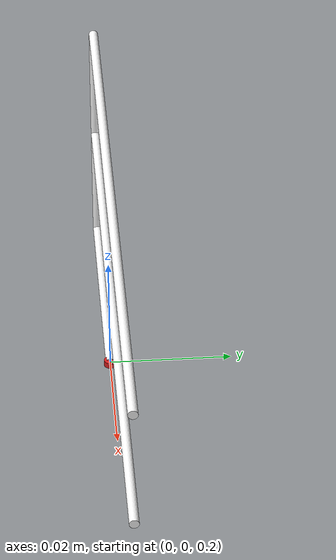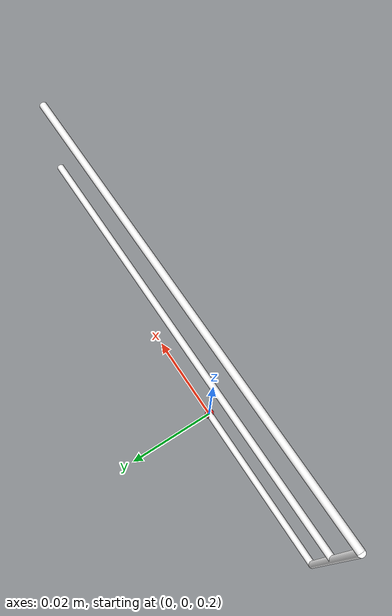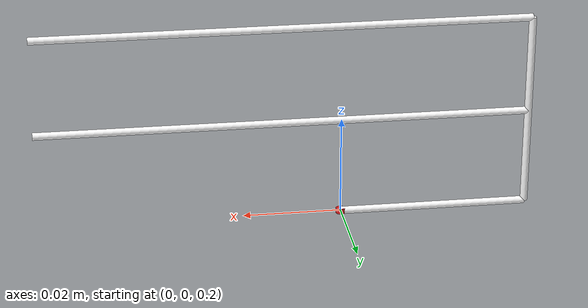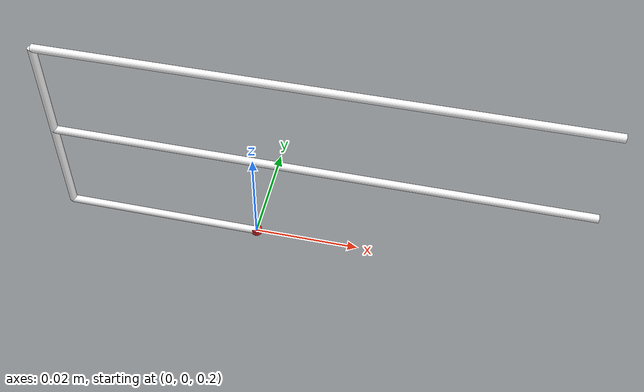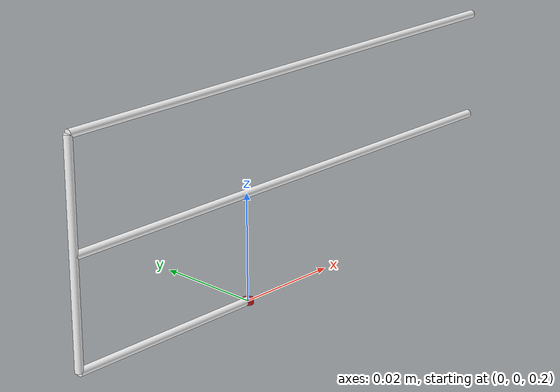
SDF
<?xml version="1.0"?>
<sdf version='1.9'>
  <world name="world1">
    <physics name="1ms" type="ignored">
      <max_step_size>0.0001</max_step_size>
      <real_time_factor>1</real_time_factor>
      <gravity>0 0 -9.81</gravity>
    </physics>
    <plugin filename="libignition-gazebo-physics-system.so"
      name="ignition::gazebo::systems::Physics">
</plugin>
    <plugin filename="libignition-gazebo-user-commands-system.so"
      name="ignition::gazebo::systems::UserCommands">
</plugin>
    <plugin filename="libignition-gazebo-scene-broadcaster-system.so"
      name="ignition::gazebo::systems::SceneBroadcaster">
</plugin>

    <light type="directional" name="sun">
      <cast_shadows>true</cast_shadows>
      <pose>0 0 10 0 0 0</pose>
      <diffuse>0.8 0.8 0.8 1</diffuse>
      <specular>0.2 0.2 0.2 1</specular>
      <attenuation>
        <range>1000</range>
        <constant>0.9</constant>
        <linear>0.01</linear>
        <quadratic>0.001</quadratic>
      </attenuation>
      <direction>-0.5 0.1 -0.9</direction>
    </light>
    <model name="ground_plane">
      <pose relative_to="world">0 0 0 0 0 0</pose>
      <static>true</static>
      <link name="link">
        <collision name="link">
          <geometry>
            <plane>
              <normal>0 0 1</normal>
            </plane>
          </geometry>
        </collision>
        <visual name="link">
          <geometry>
            <plane>
              <normal>0 0 1</normal>
              <size>100 100</size>
            </plane>
          </geometry>
          <material>
            <ambient>0.8 0.8 0.8 1</ambient>
            <diffuse>0.8 0.8 0.8 1</diffuse>
            <specular>0.8 0.8 0.8 1</specular>
          </material>
        </visual>
      </link>
    </model>
    <model name='wing_asm'>
                <joint name="anchor" type="fixed">
                <pose relative_to="base_link">0 0 0 0 0 0</pose>
                <parent>world</parent>
                <child>base_link</child>
            </joint>
      <link name='base_link'>
        <pose>0 0 .2 0 0 0</pose>
        <inertial>
          <mass>10</mass>
          <inertia>
            <ixx>7.3803000000000005e-07</ixx>
            <ixy>-9.4344999999999995e-25</ixy>
            <ixz>-1.0385000000000001e-09</ixz>
            <iyy>2.5405000000000001e-06</iyy>
            <iyz>9.0889999999999994e-24</iyz>
            <izz>1.8072e-06</izz>
          </inertia>
        </inertial>`
        <visual name='base_link_visual'>
          <pose>0 0 0 0 0 0</pose>
          <geometry>
            <cylinder>
              <radius>0.001</radius>
              <length>0.001</length>
            </cylinder>
          </geometry>
          <material>
            <diffuse>0.86765 0.122549 0.122549 1</diffuse>
            <ambient>0.86765 0.122549 0.122549 1</ambient>
          </material>
        </visual>
      </link>

      <joint name='driving_joint' type='revolute'>
        <pose relative_to='base_link'>0 0 0 0 1.57 0</pose>
        <parent>base_link</parent>
        <child>driving_link</child>
        <axis>
          <xyz>0 1 0</xyz>
        <limit>
          <lower>10000</lower>
          <upper>10000</upper>
        </limit>
          <dynamics>
            <spring_reference>0</spring_reference>
            <spring_stiffness>0.00001</spring_stiffness>
          </dynamics>
        </axis>
        <physics>
    <ode>
      <implicit_spring_damper>false</implicit_spring_damper>
      <cfm>0</cfm>
      <erp>0.2</erp>
      <max_force>10.0</max_force> <!-- Max force applied to the joint -->
      <velocity>1</velocity>
    </ode>
  </physics>
      </joint>

      <link name='driving_link'>
        <pose relative_to='driving_joint'>0 0 0 0 0 0</pose>
        <inertial>
          <pose>0 0 0 0 0 0</pose>
          <mass>0.00016893</mass>
          <inertia>
            <ixx>9.7215e-10</ixx>
            <ixy>-4.8913999999999998e-26</ixy>
            <ixz>1.0304e-25</ixz>
            <iyy>9.0105999999999999e-10</iyy>
            <iyz>1.3852e-17</iyz>
            <izz>2.5573999999999999e-10</izz>
          </inertia>
        </inertial>
        <visual name='driving_link_visual'>
          <pose>0 0 -0.01915 0 0 0</pose>
          <geometry>
              <cylinder>
                <radius>0.00075</radius>
                <length>0.0383</length>
              </cylinder>
          </geometry>
          <material>
            <diffuse>1 1 1 1</diffuse>
            <ambient>1 1 1 1</ambient>
          </material>
        </visual>
      </link>

      <joint name='humerus_joint' type='revolute'>
        <pose relative_to='driving_joint'>0 0.0 -0.03830 0 1.57 0</pose>
        <parent>driving_link</parent>
        <child>humerus</child>
        <axis>
          <xyz>0 1 0</xyz>
          <limit>
              <lower>-1.79769e+308</lower>
              <upper>1.79769e+308</upper>
          </limit>
          <dynamics>
            <spring_reference>0</spring_reference>
            <spring_stiffness>0.00001</spring_stiffness>
          </dynamics>
        </axis>
      </joint>

      <link name='humerus'>
        <pose relative_to='humerus_joint'>0 0 0 0 0 0</pose>
        <inertial>
          <pose>0.001375 0.00175 0.013055 0 0 0</pose>
          <mass>0.0030354999999999998</mass>
          <inertia>
            <ixx>3.0067e-09</ixx>
            <ixy>-1.1299e-25</ixy>
            <ixz>-2.3232e-24</ixz>
            <iyy>2.9301e-09</iyy>
            <iyz>8.4040999999999998e-16</iyz>
            <izz>3.8589e-10</izz>
          </inertia>
        </inertial>
        <visual name='humerus_visual'>
          <pose>0 0 -0.02 0 0 0</pose>
          <geometry>
            <cylinder>
              <radius>0.00075</radius>
              <length>0.04</length>
            </cylinder>
          </geometry>
          <material>
            <diffuse>1 1 1 1</diffuse>
            <ambient>1 1 1 1</ambient>
          </material>
        </visual>
      </link>

      <joint name='ulna_joint' type='revolute'>
          <pose relative_to='humerus_joint'>0 0 -0.02 0 -1.57 0 </pose>
        <parent>humerus</parent>
        <child>ulna</child>
        <axis>
          <xyz>1 0 0</xyz>
          <limit>
                        <lower>-1.79769e+308</lower>
                        <upper>1.79769e+308</upper>
          </limit>
          <dynamics>
            <spring_reference>0</spring_reference>
            <spring_stiffness>0.00001</spring_stiffness>
          </dynamics>
        </axis>
      </joint>

      <link name='ulna'>
        <pose relative_to='ulna_joint'>0 0 0 0 0 0</pose>
        <inertial>
          <pose>0.0015 0.00175 -0.037 0 0 0</pose>
          <mass>0.0065141000000000005</mass>
          <inertia>
            <ixx>1.2522000000000001e-07</ixx>
            <ixy>-7.7445999999999999e-25</ixy>
            <ixz>-2.3424000000000001e-23</ixz>
            <iyy>1.2601e-07</iyy>
            <iyz>8.6889999999999998e-16</iyz>
            <izz>1.7161999999999999e-09</izz>
          </inertia>
        </inertial>
        <visual name='ulna_visual'>
          <pose>0 0 .05 0 0 0</pose>
          <geometry>
            <cylinder>
              <radius>0.00075</radius>
              <length>0.1</length>
            </cylinder>
          </geometry>
          <material>
            <diffuse>1 1 1 1</diffuse>
            <ambient>1 1 1 1</ambient>
          </material>
        </visual>
      </link>

      <joint name='radial_joint' type='revolute'>
        <pose relative_to='humerus_joint'>0 0 -0.04 0 -1.57 0 </pose>
        <parent>humerus</parent>
        <child>radius</child>
        <axis>
          <xyz>1 0 0</xyz>
          <limit>
            <lower>-1.79769e+308</lower>
            <upper>1.79769e+308</upper>
          </limit>
          <dynamics>
            <spring_reference>0</spring_reference>
            <spring_stiffness>0.00001</spring_stiffness>
          </dynamics>
        </axis>
      </joint>

      <link name='radius'>
        <pose relative_to='radial_joint'>0 0 0 0 0 0</pose>
        <inertial>
          <pose>0.0015 0.00175 -0.03576 0 0 0</pose>
          <mass>0.00071232000000000001</mass>
          <inertia>
            <ixx>4.3980000000000001e-08</ixx>
            <ixy>-9.9168000000000003e-19</ixy>
            <ixz>4.8890000000000004e-15</ixz>
            <iyy>4.4758000000000003e-08</iyy>
            <iyz>-8.2275000000000001e-16</iyz>
            <izz>1.8231e-09</izz>
          </inertia>
        </inertial>
        <visual name='radius_visual'>
          <pose>0 0 0.05 0 0 0</pose>
          <geometry>
            <cylinder>
              <radius>0.00075</radius>
              <length>0.1</length>
            </cylinder>
          </geometry>
          <material>
            <diffuse>1 1 1 1</diffuse>
            <ambient>1 1 1 1</ambient>
          </material>
        </visual>
      </link>

        <!-- ^ 23.0568891999986754 deg from vertical,  15.25mm length -->
        <!-- 0.01525*sin(0.40241863180650000453) = 0.005972 (horizontal -->
        <!-- cos^ = 0.01403177573 (vert) -->
    </model>
  </world>
</sdf>
